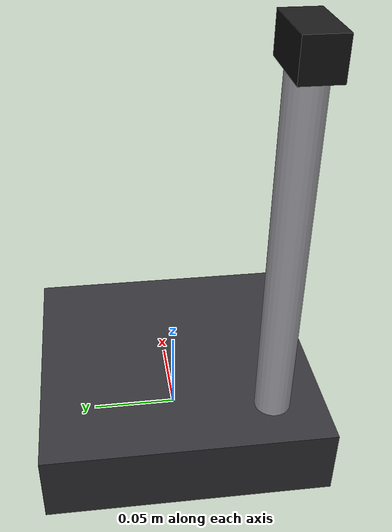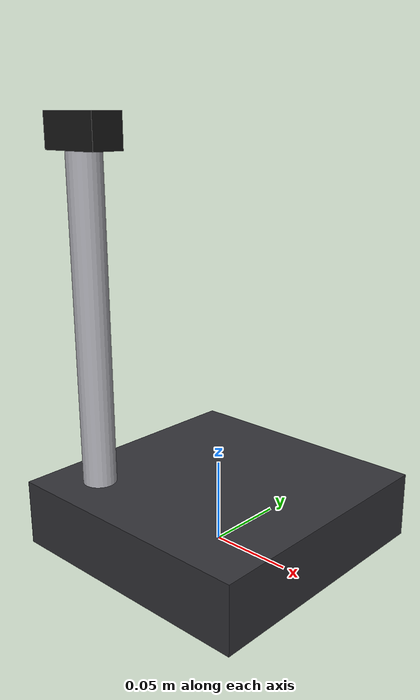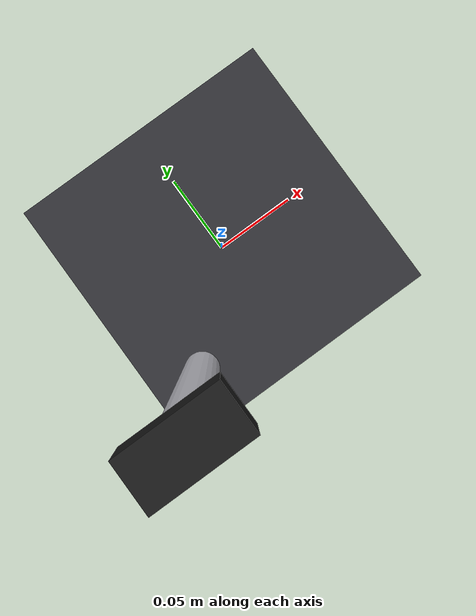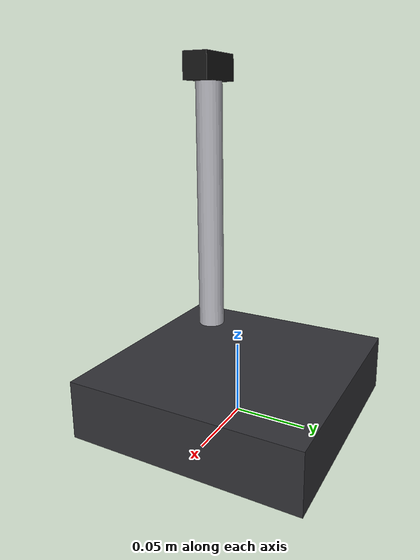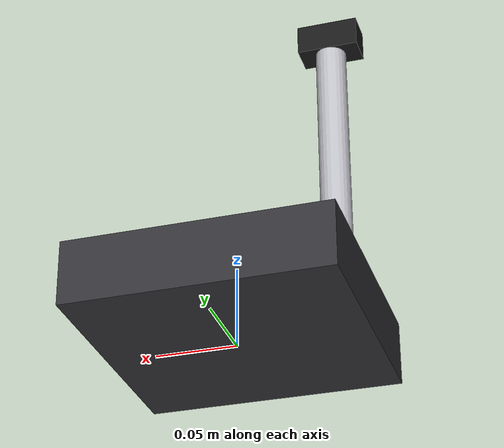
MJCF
<?xml version="1.0" encoding="utf-8"?>
<mujoco model="atomic_force_microscope">
  <compiler angle="radian" autolimits="true"/>
  <default>
    <default class="body"><geom contype="1" conaffinity="1"/></default>
  </default>
  <worldbody>
    <body name="base">
      <geom type="box" size="0.08 0.08 0.02" pos="0 0 0.02" rgba="0.2 0.2 0.22 1" class="body"/>
      <geom type="cylinder" size="0.01 0.10" pos="-0.05 -0.05 0.14" rgba="0.75 0.75 0.78 1" class="body"/>
      <body name="cantilever_head" pos="-0.05 -0.05 0.24">
        <joint name="cantilever_head_joint" type="slide" axis="0 0 1" range="-0.05 0" damping="1.0" frictionloss="0.3"/>
  <geom type="box" size="0.02 0.01 0.01" pos="0 0 0" rgba="0.1 0.1 0.1 1" class="body"/>
      </body>
    </body>
  </worldbody>
</mujoco>
